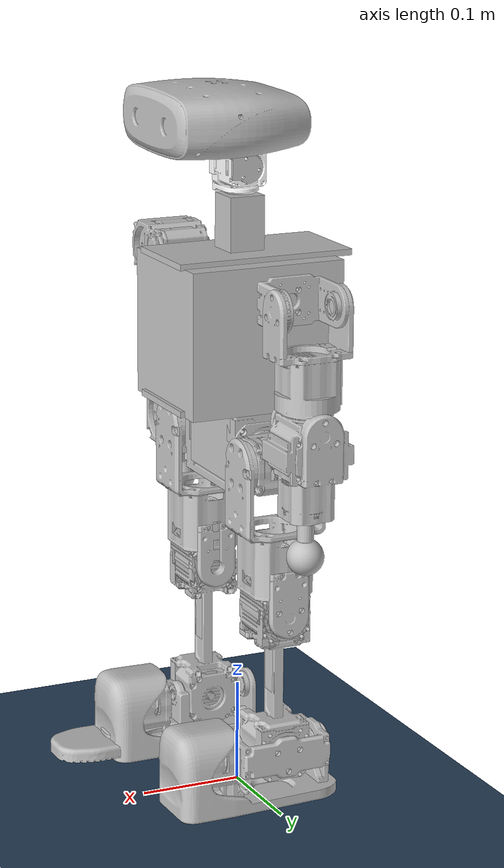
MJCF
<mujoco model="pi_plus_24dof_250828">
  <compiler angle="radian" meshdir="../meshes/"/>
  <default>
    <default class="leg_motor">
      <joint damping="0.05" armature="0.044277" frictionloss="0.2" />
    </default>
    <default class="arm_motor">
      <joint damping="0.05" armature="0.008419" frictionloss="0.2" />
    </default>

  </default>
  <asset>
    <mesh name="base_link" file="base_link.STL"/>
    <mesh name="l_hip_pitch_link" file="l_hip_pitch_link.STL"/>
    <mesh name="l_hip_roll_link" file="l_hip_roll_link.STL"/>
    <mesh name="l_thigh_link" file="l_thigh_link.STL"/>
    <mesh name="l_calf_link" file="l_calf_link.STL"/>
    <mesh name="l_calf_link_2" file="l_calf_link_2.STL"/>
    <mesh name="l_calf_link_5" file="l_calf_link_5.STL"/>
    <mesh name="l_calf_link_6" file="l_calf_link_6.STL"/>
    <mesh name="l_ankle_pitch_link" file="l_ankle_pitch_link.STL"/>
    <mesh name="l_ankle_roll_link" file="l_ankle_roll_link.STL"/>
    <mesh name="ankle_roll_link_simplify" file="ankle_roll_link_simplify.STL"/>
    <mesh name="r_hip_pitch_link" file="r_hip_pitch_link.STL"/>
    <mesh name="r_hip_roll_link" file="r_hip_roll_link.STL"/>
    <mesh name="r_thigh_link" file="r_thigh_link.STL"/>
    <mesh name="r_calf_link" file="r_calf_link.STL"/>
    <mesh name="r_calf_link_1" file="r_calf_link_1.STL"/>
    <mesh name="r_calf_link_5" file="r_calf_link_5.STL"/>
    <mesh name="r_calf_link_6" file="r_calf_link_6.STL"/>
    <mesh name="r_ankle_pitch_link" file="r_ankle_pitch_link.STL"/>
    <mesh name="r_ankle_roll_link" file="r_ankle_roll_link.STL"/>
    <mesh name="l_shoulder_pitch_link" file="l_shoulder_pitch_link.STL"/>
    <mesh name="l_shoulder_roll_link" file="l_shoulder_roll_link.STL"/>
    <mesh name="l_upper_arm_link" file="l_upper_arm_link.STL"/>
    <mesh name="l_elbow_link" file="l_elbow_link.STL"/>
    <mesh name="l_wrist_link" file="l_wrist_link.STL"/>
    <mesh name="r_shoulder_pitch_link" file="r_shoulder_pitch_link.STL"/>
    <mesh name="r_shoulder_roll_link" file="r_shoulder_roll_link.STL"/>
    <mesh name="r_upper_arm_link" file="r_upper_arm_link.STL"/>
    <mesh name="r_elbow_link" file="r_elbow_link.STL"/>
    <mesh name="r_wrist_link" file="r_wrist_link.STL"/>
    <mesh name="head_yaw_link" file="head_yaw_link.STL"/>
    <mesh name="head_pitch_link" file="head_pitch_link.STL"/>
  </asset>

  <worldbody>
    <body name="base_link" pos="0 0 0.39">
      <site name="imu" size="0.01" pos="-0.0 -0.0 0.0" />

      <inertial pos="0.00504177 -0.000223877 0.0965201" quat="0.999242 0.00281629 0.0376757 0.0093836" mass="3.45126" diaginertia="0.046034 0.0431943 0.00969223"/>
      <joint name="floating_base_joint" type="free" limited="false" actuatorfrclimited="false" class="leg_motor"/>
      <geom type="mesh" contype="0" conaffinity="0" group="1" density="0" rgba="0.75294 0.75294 0.75294 1" mesh="base_link"/>
      <geom size="0.077 0.065 0.07" pos="0 0 0.07" type="box" rgba="0.75294 0.75294 0.75294 1"/>
      <geom size="0.0175 0.0175 0.037" pos="0 0 0.16" type="box" rgba="0.75294 0.75294 0.75294 1"/>
      <geom size="0.088 0.046 0.003" pos="-0.007 0 0.142" type="box" rgba="0.75294 0.75294 0.75294 1"/>
      <geom size="0.081 0.046 0.003" pos="0 0 0.003" type="box" rgba="0.75294 0.75294 0.75294 1"/>
      <geom size="0.03 0.045 0.035" pos="0 0 -0.035" type="box" rgba="0.75294 0.75294 0.75294 1"/>
      <geom pos="0 0.00025 0.1981" type="mesh" contype="0" conaffinity="0" group="1" density="0" rgba="1 1 1 1" mesh="head_yaw_link"/>
      <geom pos="0 0.00025 0.1981" type="mesh" rgba="1 1 1 1" mesh="head_yaw_link"/>
      <geom pos="0 0.00025 0.2236" quat="1 0 0 0" type="mesh" contype="0" conaffinity="0" group="1" density="0" rgba="0.75294 0.75294 0.75294 1" mesh="head_pitch_link"/>
      <geom pos="0 0.00025 0.2236" quat="1 0 0 0" type="mesh" rgba="0.75294 0.75294 0.75294 1" mesh="head_pitch_link"/>
      <body name="l_hip_pitch_link" pos="0 0.0475 -0.0435">
        <inertial pos="0.0013686 0.0306252 0.0005611" quat="0.559669 0.436788 -0.567986 0.416388" mass="0.398576" diaginertia="0.000124225 0.000104491 9.64839e-05"/>
        <joint name="l_hip_pitch_joint" pos="0 0 0" axis="0 1 0" range="-3.12 2.94" actuatorfrcrange="-20 20" damping="0.02" class="leg_motor"/>
        <geom type="mesh" contype="0" conaffinity="0" group="1" density="0" rgba="0.75294 0.75294 0.75294 1" mesh="l_hip_pitch_link"/>
        <geom type="mesh" rgba="0.75294 0.75294 0.75294 1" mesh="l_hip_pitch_link"/>
        <body name="l_hip_roll_link" pos="0 0.034 0">
          <inertial pos="0.0009844 0.0001364 -0.0612495" quat="0.704743 0.0289888 0.0273147 0.708344" mass="0.485718" diaginertia="0.000574204 0.000484974 0.000220222"/>
          <joint name="l_hip_roll_joint" pos="0 0 0" axis="1 0 0" range="-0.31 3.14" actuatorfrcrange="-20 20" damping="0.02" class="leg_motor"/>
          <geom type="mesh" contype="0" conaffinity="0" group="1" density="0" rgba="0.75294 0.75294 0.75294 1" mesh="l_hip_roll_link"/>
          <geom type="mesh" rgba="0.75294 0.75294 0.75294 1" mesh="l_hip_roll_link"/>
          <body name="l_thigh_link" pos="-0.00025 0 -0.0977">
            <inertial pos="0 -0.000955 -0.0239847" quat="0.660215 0.751077 0 0" mass="0.10938" diaginertia="0.0001198 9.0656e-05 5.6844e-05"/>
            <joint name="l_thigh_joint" pos="0 0 0" axis="0 0 1" range="-2.87 2.87" actuatorfrcrange="-20 20" damping="0.02" class="leg_motor"/>
            <geom type="mesh" contype="0" conaffinity="0" group="1" density="0" rgba="0.75294 0.75294 0.75294 1" mesh="l_thigh_link"/>
            <geom type="mesh" rgba="0.75294 0.75294 0.75294 1" mesh="l_thigh_link"/>
            <body name="l_calf_link" pos="0 0 -0.045">
              <inertial pos="-1.36e-05 0.0027624 -0.0700557" quat="0.999998 -0.000155372 0.00210283 0.000190511" mass="0.80287" diaginertia="0.00372686 0.0037147 0.000183937"/>
              <joint name="l_calf_joint" pos="0 0 0" axis="0 1 0" range="-2.49 2.49" actuatorfrcrange="-20 20" damping="0.02" class="leg_motor"/>
              <geom type="mesh" contype="0" conaffinity="0" group="1" density="0" rgba="0.75294 0.75294 0.75294 1" mesh="l_calf_link"/>
              <geom type="mesh" rgba="0.75294 0.75294 0.75294 1" mesh="l_calf_link_2"/>
              <geom type="mesh" rgba="0.75294 0.75294 0.75294 1" mesh="l_calf_link_5"/>
              <geom type="mesh" rgba="0.75294 0.75294 0.75294 1" mesh="l_calf_link_6"/>
              <geom size="0.005 0.01 0.0275" pos="0 0 -0.055" type="box" rgba="0.75294 0.75294 0.75294 1"/>
              <body name="l_ankle_pitch_link" pos="0 0 -0.14">
                <inertial pos="0.0065537 -0.0021861 1.45e-05" quat="-0.0131401 0.706752 0.0131616 0.707217" mass="0.165583" diaginertia="0.000272 0.000184689 0.000120111"/>
                <joint name="l_ankle_pitch_joint" pos="0 0 0" axis="0 1 0" range="-0.97 0.92" actuatorfrcrange="-20 20" damping="0.02" class="leg_motor"/>
                <geom type="mesh" contype="0" conaffinity="0" group="1" density="0" rgba="0.75294 0.75294 0.75294 1" mesh="l_ankle_pitch_link"/>
                <geom type="mesh" rgba="0.75294 0.75294 0.75294 1" mesh="l_ankle_pitch_link"/>
                <body name="l_ankle_roll_link" pos="0.051 0 0">
                  <inertial pos="0.0026578 0.0001757 -0.0126664" quat="0.558153 0.433128 0.435137 0.558141" mass="0.622348" diaginertia="0.00146851 0.00134933 0.000381364"/>
                  <joint name="l_ankle_roll_joint" pos="0 0 0" axis="1 0 0" range="-0.78 0.78" actuatorfrcrange="-20 20" damping="0.02" class="leg_motor"/>
                  <geom type="mesh" contype="0" conaffinity="0" group="1" density="0" rgba="0.75294 0.75294 0.75294 1" mesh="l_ankle_roll_link"/>
                  <geom type="mesh" rgba="0.75294 0.75294 0.75294 1" mesh="ankle_roll_link_simplify"/>
                </body>
              </body>
            </body>
          </body>
        </body>
      </body>
      <body name="l_shoulder_pitch_link" pos="0 0.1069 0.117">
        <inertial pos="0.000462 0.0211803 0.0001949" quat="0.00394178 0.705746 -0.0116892 0.708358" mass="0.108442" diaginertia="0.000103403 8.48155e-05 4.86816e-05"/>
        <joint name="l_shoulder_pitch_joint" pos="0 0 0" axis="0 1 0" range="-4.18 1.04" actuatorfrcrange="-10 10" damping="0.02" class="arm_motor"/>
        <geom type="mesh" contype="0" conaffinity="0" group="1" density="0" rgba="0.75294 0.75294 0.75294 1" mesh="l_shoulder_pitch_link"/>
        <geom type="mesh" rgba="0.75294 0.75294 0.75294 1" mesh="l_shoulder_pitch_link"/>
        <body name="l_shoulder_roll_link" pos="0 0.038 0">
          <inertial pos="0.0012798 2.31e-05 -0.0245659" quat="0.721122 0.0245516 0.0139423 0.692233" mass="0.446831" diaginertia="0.000407287 0.000398482 0.000126231"/>
          <joint name="l_shoulder_roll_joint" pos="0 0 0" axis="1 0 0" range="-0.36 3.4" actuatorfrcrange="-10 10" damping="0.02" class="arm_motor"/>
          <geom type="mesh" contype="0" conaffinity="0" group="1" density="0" rgba="0.75294 0.75294 0.75294 1" mesh="l_shoulder_roll_link"/>
          <geom type="mesh" rgba="0.75294 0.75294 0.75294 1" mesh="l_shoulder_roll_link"/>
          <body name="l_upper_arm_link" pos="0 0 -0.0724">
            <inertial pos="-9.5e-05 -0.0006519 -0.0208905" quat="0.718779 0.695217 -0.00497696 0.00242689" mass="0.108442" diaginertia="0.000103303 8.47379e-05 4.86593e-05"/>
            <joint name="l_upper_arm_joint" pos="0 0 0" axis="0 0 1" range="-2.61 2.61" actuatorfrcrange="-10 10" damping="0.02" class="arm_motor"/>
            <geom type="mesh" contype="0" conaffinity="0" group="1" density="0" rgba="0.75294 0.75294 0.75294 1" mesh="l_upper_arm_link"/>
            <geom type="mesh" rgba="0.75294 0.75294 0.75294 1" mesh="l_upper_arm_link"/>
            <body name="l_elbow_link" pos="0 0 -0.038">
              <inertial pos="0.000252576 -0.00105682 -0.0361" quat="0.999492 0.0160127 0.000194321 0.027573" mass="0.531335" diaginertia="0.000799896 0.000790805 0.000134146"/>
              <joint name="l_elbow_joint" pos="0 0 0" axis="0 1 0" range="-1.91 1.91" actuatorfrcrange="-10 10" damping="0.02" class="arm_motor"/>
              <geom type="mesh" contype="0" conaffinity="0" group="1" density="0" rgba="0.75294 0.75294 0.75294 1" mesh="l_elbow_link"/>
              <geom type="mesh" rgba="0.75294 0.75294 0.75294 1" mesh="l_elbow_link"/>
              <body name="l_wrist_link" pos="0 0 -0.0724">
                <inertial pos="0 0 -0.0234157" mass="0.0851827" diaginertia="3.68e-05 3.68e-05 8e-06"/>
                <joint name="l_wrist_joint" pos="0 0 0" axis="0 0 1" range="-3.14 3.14" actuatorfrcrange="-10 10" damping="0.02" class="arm_motor"/>
                <geom type="mesh" contype="0" conaffinity="0" group="1" density="0" rgba="0.75294 0.75294 0.75294 1" mesh="l_wrist_link"/>
                <geom type="mesh" rgba="0.75294 0.75294 0.75294 1" mesh="l_wrist_link"/>
              </body>
            </body>
          </body>
        </body>
      </body>
      <body name="r_hip_pitch_link" pos="0 -0.0475 -0.0435">
        <inertial pos="0.0013698 -0.0311672 0.0005611" quat="0.443132 0.552839 -0.446998 0.546072" mass="0.398576" diaginertia="0.000125603 0.000105582 9.67146e-05"/>
        <joint name="r_hip_pitch_joint" pos="0 0 0" axis="0 1 0" range="-3.12 2.94" actuatorfrcrange="-20 20" damping="0.02" class="leg_motor"/>
        <geom type="mesh" contype="0" conaffinity="0" group="1" density="0" rgba="0.75294 0.75294 0.75294 1" mesh="r_hip_pitch_link"/>
        <geom type="mesh" rgba="0.75294 0.75294 0.75294 1" mesh="r_hip_pitch_link"/>
        <body name="r_hip_roll_link" pos="0 -0.034 0">
          <inertial pos="0.0009844 5.42e-05 -0.0612495" quat="0.704706 0.0276926 0.0286221 0.708381" mass="0.485718" diaginertia="0.000574203 0.000484974 0.000220223"/>
          <joint name="r_hip_roll_joint" pos="0 0 0" axis="1 0 0" range="-3.14 0.31" actuatorfrcrange="-20 20" damping="0.02" class="leg_motor"/>
          <geom type="mesh" contype="0" conaffinity="0" group="1" density="0" rgba="0.75294 0.75294 0.75294 1" mesh="r_hip_roll_link"/>
          <geom type="mesh" rgba="0.75294 0.75294 0.75294 1" mesh="r_hip_roll_link"/>
          <body name="r_thigh_link" pos="-0.00025 0 -0.0977">
            <inertial pos="0 0.0008801 -0.0236847" quat="0.749663 0.66182 0 0" mass="0.10938" diaginertia="0.0001194 9.02123e-05 5.68877e-05"/>
            <joint name="r_thigh_joint" pos="0 0 0" axis="0 0 1" range="-2.87 2.87" actuatorfrcrange="-20 20" damping="0.02" class="leg_motor"/>
            <geom type="mesh" contype="0" conaffinity="0" group="1" density="0" rgba="0.75294 0.75294 0.75294 1" mesh="r_thigh_link"/>
            <geom type="mesh" rgba="0.75294 0.75294 0.75294 1" mesh="r_thigh_link"/>
            <body name="r_calf_link" pos="0 0 -0.045">
              <inertial pos="-1.36e-05 -0.0036624 -0.0700557" quat="0.999998 0.000155372 -0.00210283 0.000190511" mass="0.80287" diaginertia="0.00372686 0.0037147 0.000183937"/>
              <joint name="r_calf_joint" pos="0 0 0" axis="0 1 0" range="-2.49 2.49" actuatorfrcrange="-20 20" damping="0.02" class="leg_motor"/>
              <geom type="mesh" contype="0" conaffinity="0" group="1" density="0" rgba="0.75294 0.75294 0.75294 1" mesh="r_calf_link"/>
              <geom type="mesh" rgba="0.75294 0.75294 0.75294 1" mesh="r_calf_link_1"/>
              <geom type="mesh" rgba="0.75294 0.75294 0.75294 1" mesh="r_calf_link_5"/>
              <geom type="mesh" rgba="0.75294 0.75294 0.75294 1" mesh="r_calf_link_6"/>
              <geom size="0.005 0.01 0.0275" pos="0 0 -0.055" type="box" rgba="0.75294 0.75294 0.75294 1"/>
              <body name="r_ankle_pitch_link" pos="0 0 -0.14">
                <inertial pos="0.0065537 0.0021861 -1.45e-05" quat="0.0131616 0.707217 -0.0131401 0.706752" mass="0.165583" diaginertia="0.000272 0.000184689 0.000120111"/>
                <joint name="r_ankle_pitch_joint" pos="0 0 0" axis="0 1 0" range="-0.97 0.92" actuatorfrcrange="-20 20" damping="0.02" class="leg_motor"/>
                <geom type="mesh" contype="0" conaffinity="0" group="1" density="0" rgba="0.75294 0.75294 0.75294 1" mesh="r_ankle_pitch_link"/>
                <geom type="mesh" rgba="0.75294 0.75294 0.75294 1" mesh="r_ankle_pitch_link"/>
                <body name="r_ankle_roll_link" pos="0.051 0 0">
                  <inertial pos="0.0026578 0.0001757 -0.0126664" quat="0.558153 0.433128 0.435137 0.558141" mass="0.622348" diaginertia="0.00146851 0.00134933 0.000381364"/>
                  <joint name="r_ankle_roll_joint" pos="0 0 0" axis="1 0 0" range="-0.78 0.78" actuatorfrcrange="-20 20" damping="0.02" class="leg_motor"/>
                  <geom type="mesh" contype="0" conaffinity="0" group="1" density="0" rgba="0.75294 0.75294 0.75294 1" mesh="r_ankle_roll_link"/>
                  <geom type="mesh" rgba="0.75294 0.75294 0.75294 1" mesh="ankle_roll_link_simplify"/>
                </body>
              </body>
            </body>
          </body>
        </body>
      </body>

      <body name="r_shoulder_pitch_link" pos="0 -0.1069 0.117">
        <inertial pos="0.000462 -0.0211803 0.0001949" quat="-0.00394178 0.705746 0.0116892 0.708358" mass="0.108442" diaginertia="0.000103403 8.48155e-05 4.86816e-05"/>
        <joint name="r_shoulder_pitch_joint" pos="0 0 0" axis="0 1 0" range="-4.18 1.04" actuatorfrcrange="-10 10" damping="0.02" class="arm_motor"/>
        <geom type="mesh" contype="0" conaffinity="0" group="1" density="0" rgba="0.75294 0.75294 0.75294 1" mesh="r_shoulder_pitch_link"/>
        <geom type="mesh" rgba="0.75294 0.75294 0.75294 1" mesh="r_shoulder_pitch_link"/>
        <body name="r_shoulder_roll_link" pos="0 -0.038 0">
          <inertial pos="0.0012798 -2.31e-05 -0.0245659" quat="0.734569 0.0231243 0.0154915 0.677963" mass="0.446831" diaginertia="0.000407304 0.00039844 0.000126257"/>
          <joint name="r_shoulder_roll_joint" pos="0 0 0" axis="1 0 0" range="-3.4 0.36" actuatorfrcrange="-10 10" damping="0.02" class="arm_motor"/>
          <geom type="mesh" contype="0" conaffinity="0" group="1" density="0" rgba="0.75294 0.75294 0.75294 1" mesh="r_shoulder_roll_link"/>
          <geom type="mesh" rgba="0.75294 0.75294 0.75294 1" mesh="r_shoulder_roll_link"/>
          <body name="r_upper_arm_link" pos="0 0 -0.0724">
            <inertial pos="-9.5e-05 0.0006519 -0.0211803" quat="0.695217 0.718779 -0.00242689 0.00497696" mass="0.108442" diaginertia="0.000103303 8.47379e-05 4.86593e-05"/>
            <joint name="r_upper_arm_joint" pos="0 0 0" axis="0 0 1" range="-2.61 2.61" actuatorfrcrange="-10 10" damping="0.02" class="arm_motor"/>
            <geom type="mesh" contype="0" conaffinity="0" group="1" density="0" rgba="0.75294 0.75294 0.75294 1" mesh="r_upper_arm_link"/>
            <geom type="mesh" rgba="0.75294 0.75294 0.75294 1" mesh="r_upper_arm_link"/>
            <body name="r_elbow_link" pos="0 0 -0.038">
              <inertial pos="-0.000252576 0.00105682 -0.0361465" quat="0.999493 -0.0159609 -0.000197727 0.0275628" mass="0.531335" diaginertia="0.00080285 0.000793758 0.000134148"/>
              <joint name="r_elbow_joint" pos="0 0 0" axis="0 1 0" range="-1.91 1.91" actuatorfrcrange="-10 10" damping="0.02" class="arm_motor"/>
              <geom type="mesh" contype="0" conaffinity="0" group="1" density="0" rgba="0.75294 0.75294 0.75294 1" mesh="r_elbow_link"/>
              <geom type="mesh" rgba="0.75294 0.75294 0.75294 1" mesh="r_elbow_link"/>
              <body name="r_wrist_link" pos="0 0 -0.0724">
                <inertial pos="0 0 -0.0237055" mass="0.0851827" diaginertia="3.68e-05 3.68e-05 8e-06"/>
                <joint name="r_wrist_joint" pos="0 0 0" axis="0 0 1" range="-3.14 3.14" actuatorfrcrange="-10 10" damping="0.02" class="arm_motor"/>
                <geom type="mesh" contype="0" conaffinity="0" group="1" density="0" rgba="0.75294 0.75294 0.75294 1" mesh="r_wrist_link"/>
                <geom type="mesh" rgba="0.75294 0.75294 0.75294 1" mesh="r_wrist_link"/>
              </body>
            </body>
          </body>
        </body>
      </body>
    </body>
  </worldbody>
   <actuator>
      <motor name="l_hip_pitch_joint" joint="l_hip_pitch_joint" gear="1" ctrllimited="true" ctrlrange="-20 20" />
      <motor name="l_hip_roll_joint" joint="l_hip_roll_joint" gear="1" ctrllimited="true" ctrlrange="-20 20" />
      <motor name="l_thigh_joint" joint="l_thigh_joint" gear="1" ctrllimited="true" ctrlrange="-20 20" />
      <motor name="l_calf_joint" joint="l_calf_joint" gear="1" ctrllimited="true" ctrlrange="-20 20" />
      <motor name="l_ankle_pitch_joint" joint="l_ankle_pitch_joint" gear="1" ctrllimited="true" ctrlrange="-20 20" />
      <motor name="l_ankle_roll_joint" joint="l_ankle_roll_joint" gear="1" ctrllimited="true" ctrlrange="-20 20" />

      <motor name="l_shoulder_pitch_joint" joint="l_shoulder_pitch_joint" gear="1" ctrllimited="true" ctrlrange="-20 20" />
      <motor name="l_shoulder_roll_joint" joint="l_shoulder_roll_joint" gear="1" ctrllimited="true" ctrlrange="-20 20" />
      <motor name="l_upper_arm_joint" joint="l_upper_arm_joint" gear="1" ctrllimited="true" ctrlrange="-20 20" />
      <motor name="l_elbow_joint" joint="l_elbow_joint" gear="1" ctrllimited="true" ctrlrange="-20 20" />
      <motor name="l_wrist_joint" joint="l_wrist_joint" gear="1" ctrllimited="true" ctrlrange="-20 20" />

      <motor name="r_hip_pitch_joint" joint="r_hip_pitch_joint" gear="1" ctrllimited="true" ctrlrange="-20 20" />
      <motor name="r_hip_roll_joint" joint="r_hip_roll_joint" gear="1" ctrllimited="true" ctrlrange="-20 20" />
      <motor name="r_thigh_joint" joint="r_thigh_joint" gear="1" ctrllimited="true" ctrlrange="-20 20" />
      <motor name="r_calf_joint" joint="r_calf_joint" gear="1" ctrllimited="true" ctrlrange="-20 20" />
      <motor name="r_ankle_pitch_joint" joint="r_ankle_pitch_joint" gear="1" ctrllimited="true" ctrlrange="-20 20" />
      <motor name="r_ankle_roll_joint" joint="r_ankle_roll_joint" gear="1" ctrllimited="true" ctrlrange="-20 20" />
      <motor name="r_shoulder_pitch_joint" joint="r_shoulder_pitch_joint" gear="1" ctrllimited="true" ctrlrange="-20 20" />
      <motor name="r_shoulder_roll_joint" joint="r_shoulder_roll_joint" gear="1" ctrllimited="true" ctrlrange="-20 20" />
      <motor name="r_upper_arm_joint" joint="r_upper_arm_joint" gear="1" ctrllimited="true" ctrlrange="-20 20" />
      <motor name="r_elbow_joint" joint="r_elbow_joint" gear="1" ctrllimited="true" ctrlrange="-20 20" />
      <motor name="r_wrist_joint" joint="r_wrist_joint" gear="1" ctrllimited="true" ctrlrange="-20 20" />
   </actuator>
   <sensor>
   <!-- Position sensors -->
    <actuatorpos name="l_hip_pitch_joint_p" actuator="l_hip_pitch_joint" user="13"/>
    <actuatorpos name="l_hip_roll_joint_p" actuator="l_hip_roll_joint" user="13"/>
    <actuatorpos name="l_thigh_joint_p" actuator="l_thigh_joint" user="13"/>
    <actuatorpos name="l_calf_joint_p" actuator="l_calf_joint" user="13"/>
    <actuatorpos name="l_ankle_pitch_joint_p" actuator="l_ankle_pitch_joint" user="13"/>
    <actuatorpos name="l_ankle_roll_joint_p" actuator="l_ankle_roll_joint" user="13"/>
    <actuatorpos name="l_shoulder_pitch_joint_p" actuator="l_shoulder_pitch_joint" user="13"/>
    <actuatorpos name="l_shoulder_roll_joint_p" actuator="l_shoulder_roll_joint" user="13"/>
    <actuatorpos name="l_upper_arm_joint_p" actuator="l_upper_arm_joint" user="13"/>
    <actuatorpos name="l_elbow_joint_p" actuator="l_elbow_joint" user="13"/>
    <actuatorpos name="l_wrist_joint_p" actuator="l_wrist_joint" user="13"/>
    <actuatorpos name="r_hip_pitch_joint_p" actuator="r_hip_pitch_joint" user="13"/>
    <actuatorpos name="r_hip_roll_joint_p" actuator="r_hip_roll_joint" user="13"/>
    <actuatorpos name="r_thigh_joint_p" actuator="r_thigh_joint" user="13"/>
    <actuatorpos name="r_calf_joint_p" actuator="r_calf_joint" user="13"/>
    <actuatorpos name="r_ankle_pitch_joint_p" actuator="r_ankle_pitch_joint" user="13"/>
    <actuatorpos name="r_ankle_roll_joint_p" actuator="r_ankle_roll_joint" user="13"/>
    <actuatorpos name="r_shoulder_pitch_joint_p" actuator="r_shoulder_pitch_joint" user="13"/>
    <actuatorpos name="r_shoulder_roll_joint_p" actuator="r_shoulder_roll_joint" user="13"/>
    <actuatorpos name="r_upper_arm_joint_p" actuator="r_upper_arm_joint" user="13"/>
    <actuatorpos name="r_elbow_joint_p" actuator="r_elbow_joint" user="13"/>
    <actuatorpos name="r_wrist_joint_p" actuator="r_wrist_joint" user="13"/>

    <!-- Velocity sensors -->
    <actuatorvel name="l_hip_pitch_joint_v" actuator="l_hip_pitch_joint" user="13" noise="1e-3"/>
    <actuatorvel name="l_hip_roll_joint_v" actuator="l_hip_roll_joint" user="13" noise="1e-3"/>
    <actuatorvel name="l_thigh_joint_v" actuator="l_thigh_joint" user="13" noise="1e-3"/>
    <actuatorvel name="l_calf_joint_v" actuator="l_calf_joint" user="13" noise="1e-3"/>
    <actuatorvel name="l_ankle_pitch_joint_v" actuator="l_ankle_pitch_joint" user="13" noise="1e-3"/>
    <actuatorvel name="l_ankle_roll_joint_v" actuator="l_ankle_roll_joint" user="13" noise="1e-3"/>

    <actuatorvel name="l_shoulder_pitch_joint_v" actuator="l_shoulder_pitch_joint" user="13" noise="1e-3"/>
    <actuatorvel name="l_shoulder_roll_joint_v" actuator="l_shoulder_roll_joint" user="13" noise="1e-3"/>
    <actuatorvel name="l_upper_arm_joint_v" actuator="l_upper_arm_joint" user="13" noise="1e-3"/>
    <actuatorvel name="l_elbow_joint_v" actuator="l_elbow_joint" user="13" noise="1e-3"/>
    <actuatorvel name="l_wrist_joint_v" actuator="l_wrist_joint" user="13" noise="1e-3"/>
    <actuatorvel name="r_hip_pitch_joint_v" actuator="r_hip_pitch_joint" user="13" noise="1e-3"/>
    <actuatorvel name="r_hip_roll_joint_v" actuator="r_hip_roll_joint" user="13" noise="1e-3"/>
    <actuatorvel name="r_thigh_joint_v" actuator="r_thigh_joint" user="13" noise="1e-3"/>
    <actuatorvel name="r_calf_joint_v" actuator="r_calf_joint" user="13" noise="1e-3"/>
    <actuatorvel name="r_ankle_pitch_joint_v" actuator="r_ankle_pitch_joint" user="13" noise="1e-3"/>
    <actuatorvel name="r_ankle_roll_joint_v" actuator="r_ankle_roll_joint" user="13" noise="1e-3"/>
    <actuatorvel name="r_shoulder_pitch_joint_v" actuator="r_shoulder_pitch_joint" user="13" noise="1e-3"/>
    <actuatorvel name="r_shoulder_roll_joint_v" actuator="r_shoulder_roll_joint" user="13" noise="1e-3"/>
    <actuatorvel name="r_upper_arm_joint_v" actuator="r_upper_arm_joint" user="13" noise="1e-3"/>
    <actuatorvel name="r_elbow_joint_v" actuator="r_elbow_joint" user="13" noise="1e-3"/>
    <actuatorvel name="r_wrist_joint_v" actuator="r_wrist_joint" user="13" noise="1e-3"/>

    <!-- Force sensors -->
    <actuatorfrc name="l_hip_pitch_joint_f" actuator="l_hip_pitch_joint" user="13" noise="1e-3"/>
    <actuatorfrc name="l_hip_roll_joint_f" actuator="l_hip_roll_joint" user="13" noise="1e-3"/>
    <actuatorfrc name="l_thigh_joint_f" actuator="l_thigh_joint" user="13" noise="1e-3"/>
    <actuatorfrc name="l_calf_joint_f" actuator="l_calf_joint" user="13" noise="1e-3"/>
    <actuatorfrc name="l_ankle_pitch_joint_f" actuator="l_ankle_pitch_joint" user="13" noise="1e-3"/>
    <actuatorfrc name="l_ankle_roll_joint_f" actuator="l_ankle_roll_joint" user="13" noise="1e-3"/>

    <actuatorfrc name="l_shoulder_pitch_joint_f" actuator="l_shoulder_pitch_joint" user="13" noise="1e-3"/>
    <actuatorfrc name="l_shoulder_roll_joint_f" actuator="l_shoulder_roll_joint" user="13" noise="1e-3"/>
    <actuatorfrc name="l_upper_arm_joint_f" actuator="l_upper_arm_joint" user="13" noise="1e-3"/>
    <actuatorfrc name="l_elbow_joint_f" actuator="l_elbow_joint" user="13" noise="1e-3"/>
    <actuatorfrc name="l_wrist_joint_f" actuator="l_wrist_joint" user="13" noise="1e-3"/>
    <actuatorfrc name="r_hip_pitch_joint_f" actuator="r_hip_pitch_joint" user="13" noise="1e-3"/>
    <actuatorfrc name="r_hip_roll_joint_f" actuator="r_hip_roll_joint" user="13" noise="1e-3"/>
    <actuatorfrc name="r_thigh_joint_f" actuator="r_thigh_joint" user="13" noise="1e-3"/>
    <actuatorfrc name="r_calf_joint_f" actuator="r_calf_joint" user="13" noise="1e-3"/>
    <actuatorfrc name="r_ankle_pitch_joint_f" actuator="r_ankle_pitch_joint" user="13" noise="1e-3"/>
    <actuatorfrc name="r_ankle_roll_joint_f" actuator="r_ankle_roll_joint" user="13" noise="1e-3"/>
    <actuatorfrc name="r_shoulder_pitch_joint_f" actuator="r_shoulder_pitch_joint" user="13" noise="1e-3"/>
    <actuatorfrc name="r_shoulder_roll_joint_f" actuator="r_shoulder_roll_joint" user="13" noise="1e-3"/>
    <actuatorfrc name="r_upper_arm_joint_f" actuator="r_upper_arm_joint" user="13" noise="1e-3"/>
    <actuatorfrc name="r_elbow_joint_f" actuator="r_elbow_joint" user="13" noise="1e-3"/>
    <actuatorfrc name="r_wrist_joint_f" actuator="r_wrist_joint" user="13" noise="1e-3"/>

    <framequat name='orientation' objtype='site' noise='0.001' objname='imu'/>
    <framepos name='position' objtype='site' noise='0.001' objname='imu'/>
    <gyro name='angular-velocity' site='imu' noise='0.005' cutoff='34.9'/>
    <velocimeter name='linear-velocity' site='imu' noise='0.001' cutoff='30'/>
    <accelerometer name='linear-acceleration' site='imu' noise='0.005' cutoff='157'/>
    <magnetometer name='magnetometer' site='imu'/>

  </sensor>
   <!-- setup scene -->
  <statistic center="1.0 0.7 1.0" extent="0.8"/>
  <visual>
    <headlight diffuse="0.6 0.6 0.6" ambient="0.1 0.1 0.1" specular="0.9 0.9 0.9"/>
    <rgba haze="0.15 0.25 0.35 1"/>
    <global azimuth="-140" elevation="-20"/>
  </visual>
  <asset>
    <texture type="skybox" builtin="flat" rgb1="0 0 0" rgb2="0 0 0" width="512" height="3072"/>
    <texture type="2d" name="groundplane" builtin="checker" mark="edge" rgb1="0.2 0.3 0.4" rgb2="0.1 0.2 0.3" markrgb="0.8 0.8 0.8" width="300" height="300"/>
    <material name="groundplane" texture="groundplane" texuniform="true" texrepeat="5 5" reflectance="0.2"/>
  </asset>
  <worldbody>
    <light pos="1 0 3.5" dir="0 0 -1" directional="true"/>
    <geom contype="15" conaffinity="15"  name="floor" size="0 0 0.05" type="plane" material="groundplane"/>
  </worldbody>
</mujoco>
